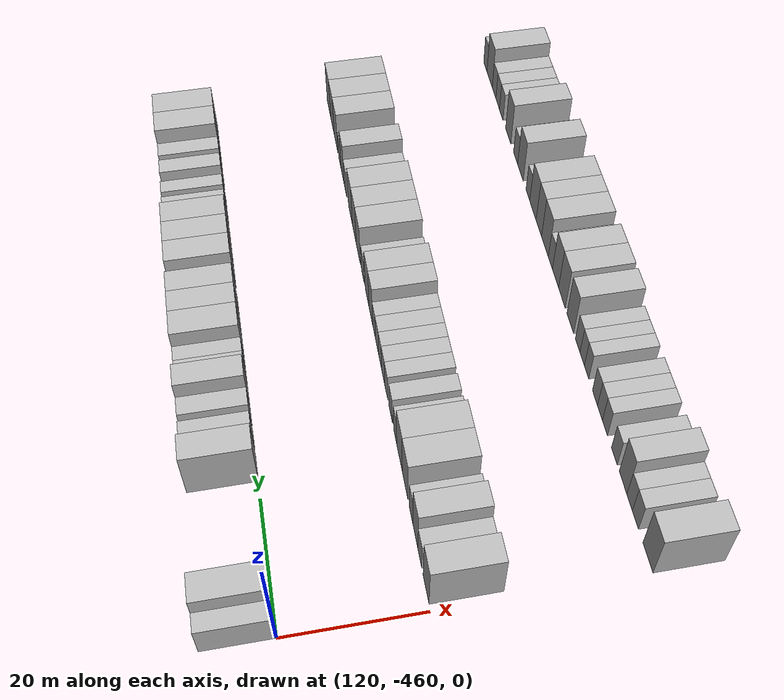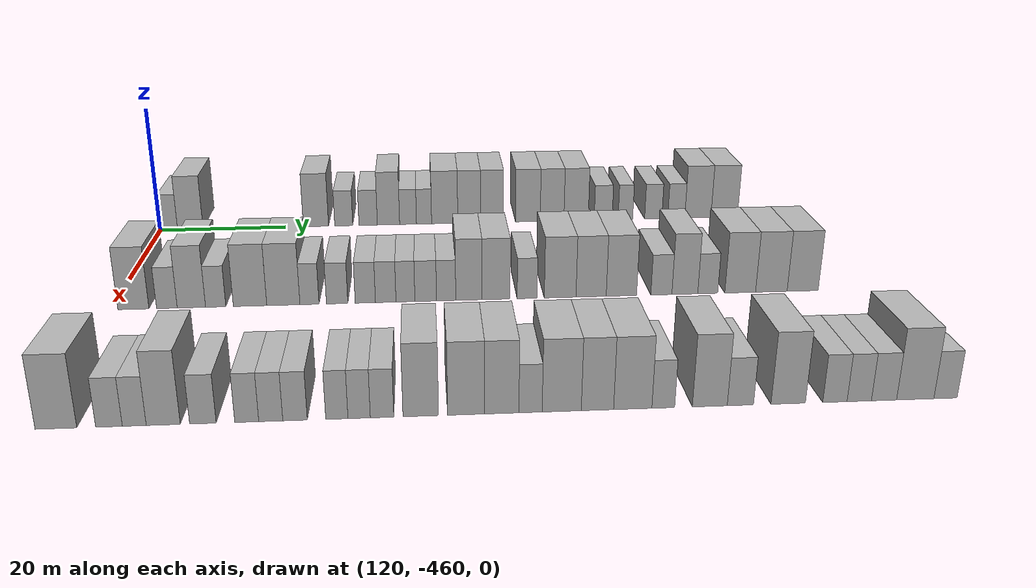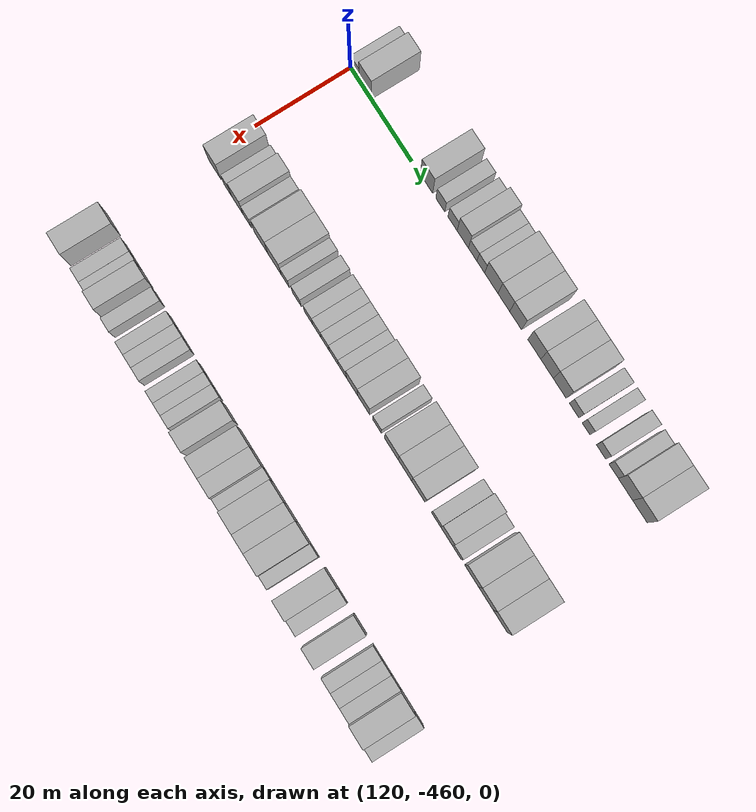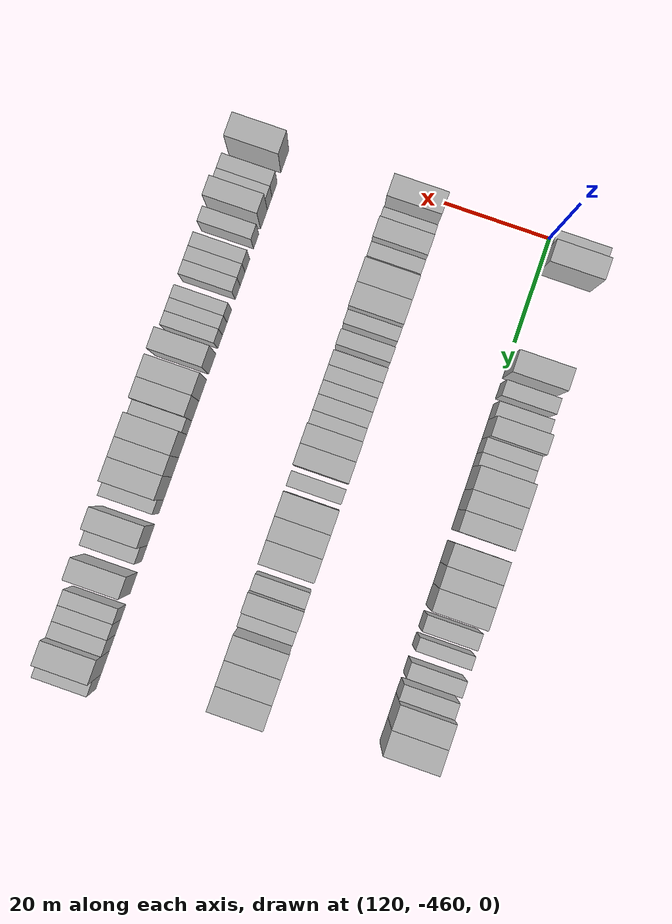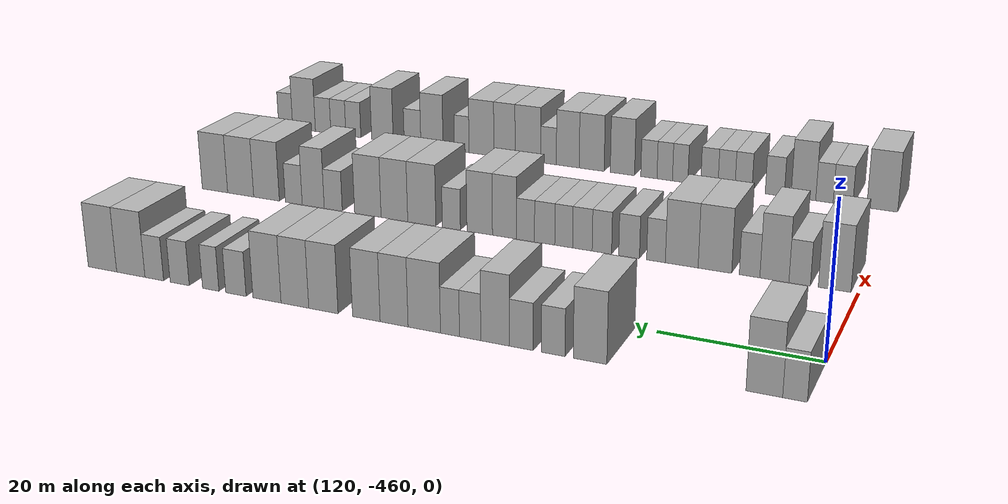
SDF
<sdf version="1.6">
 <world name="default">
  <model name="building_680">
   <static>1</static>
   <pose>115.0000 -458.6556 0 0.000000 0.000000 0.000000</pose>
   <link name="link">
    <pose>0 0 3.00 0 0 0</pose>
    <collision name="collision"><geometry><box><size>10.0000 2.6889 6.0000</size></box></geometry></collision>
    <visual name="visual">
     <cast_shadows>0</cast_shadows>
     <geometry><box><size>10.0000 2.6889 6.0000</size></box></geometry>
     <material>
      <script>
       <uri>model://HANNAS_wall/materials/scripts</uri>
       <uri>model://HANNAS_wall/materials/textures</uri>
       <name>vrc/HANNAS_wall</name>
      </script>
     </material>
    </visual>
   </link>
  </model>
  <model name="building_681">
   <static>1</static>
   <pose>115.0000 -455.2811 0 0.000000 0.000000 0.000000</pose>
   <link name="link">
    <pose>0 0 4.50 0 0 0</pose>
    <collision name="collision"><geometry><box><size>10.0000 4.0601 9.0000</size></box></geometry></collision>
    <visual name="visual">
     <cast_shadows>0</cast_shadows>
     <geometry><box><size>10.0000 4.0601 9.0000</size></box></geometry>
     <material>
      <script>
       <uri>model://HANNAS_wall/materials/scripts</uri>
       <uri>model://HANNAS_wall/materials/textures</uri>
       <name>vrc/HANNAS_wall</name>
      </script>
     </material>
    </visual>
   </link>
  </model>
  <model name="building_682">
   <static>1</static>
   <pose>115.0000 -435.1572 0 0.000000 0.000000 0.000000</pose>
   <link name="link">
    <pose>0 0 4.50 0 0 0</pose>
    <collision name="collision"><geometry><box><size>10.0000 4.0626 9.0000</size></box></geometry></collision>
    <visual name="visual">
     <cast_shadows>0</cast_shadows>
     <geometry><box><size>10.0000 4.0626 9.0000</size></box></geometry>
     <material>
      <script>
       <uri>model://HANNAS_wall/materials/scripts</uri>
       <uri>model://HANNAS_wall/materials/textures</uri>
       <name>vrc/HANNAS_wall</name>
      </script>
     </material>
    </visual>
   </link>
  </model>
  <model name="building_683">
   <static>1</static>
   <pose>115.0000 -430.6680 0 0.000000 0.000000 0.000000</pose>
   <link name="link">
    <pose>0 0 3.00 0 0 0</pose>
    <collision name="collision"><geometry><box><size>10.0000 2.9157 6.0000</size></box></geometry></collision>
    <visual name="visual">
     <cast_shadows>0</cast_shadows>
     <geometry><box><size>10.0000 2.9157 6.0000</size></box></geometry>
     <material>
      <script>
       <uri>model://HANNAS_wall/materials/scripts</uri>
       <uri>model://HANNAS_wall/materials/textures</uri>
       <name>vrc/HANNAS_wall</name>
      </script>
     </material>
    </visual>
   </link>
  </model>
  <model name="building_684">
   <static>1</static>
   <pose>115.0000 -426.7165 0 0.000000 0.000000 0.000000</pose>
   <link name="link">
    <pose>0 0 3.00 0 0 0</pose>
    <collision name="collision"><geometry><box><size>10.0000 2.9874 6.0000</size></box></geometry></collision>
    <visual name="visual">
     <cast_shadows>0</cast_shadows>
     <geometry><box><size>10.0000 2.9874 6.0000</size></box></geometry>
     <material>
      <script>
       <uri>model://HANNAS_wall/materials/scripts</uri>
       <uri>model://HANNAS_wall/materials/textures</uri>
       <name>vrc/HANNAS_wall</name>
      </script>
     </material>
    </visual>
   </link>
  </model>
  <model name="building_685">
   <static>1</static>
   <pose>115.0000 -423.4122 0 0.000000 0.000000 0.000000</pose>
   <link name="link">
    <pose>0 0 4.50 0 0 0</pose>
    <collision name="collision"><geometry><box><size>10.0000 3.6212 9.0000</size></box></geometry></collision>
    <visual name="visual">
     <cast_shadows>0</cast_shadows>
     <geometry><box><size>10.0000 3.6212 9.0000</size></box></geometry>
     <material>
      <script>
       <uri>model://HANNAS_wall/materials/scripts</uri>
       <uri>model://HANNAS_wall/materials/textures</uri>
       <name>vrc/HANNAS_wall</name>
      </script>
     </material>
    </visual>
   </link>
  </model>
  <model name="building_686">
   <static>1</static>
   <pose>115.0000 -420.2289 0 0.000000 0.000000 0.000000</pose>
   <link name="link">
    <pose>0 0 3.00 0 0 0</pose>
    <collision name="collision"><geometry><box><size>10.0000 2.7454 6.0000</size></box></geometry></collision>
    <visual name="visual">
     <cast_shadows>0</cast_shadows>
     <geometry><box><size>10.0000 2.7454 6.0000</size></box></geometry>
     <material>
      <script>
       <uri>model://HANNAS_wall/materials/scripts</uri>
       <uri>model://HANNAS_wall/materials/textures</uri>
       <name>vrc/HANNAS_wall</name>
      </script>
     </material>
    </visual>
   </link>
  </model>
  <model name="building_687">
   <static>1</static>
   <pose>115.0000 -417.6222 0 0.000000 0.000000 0.000000</pose>
   <link name="link">
    <pose>0 0 3.00 0 0 0</pose>
    <collision name="collision"><geometry><box><size>10.0000 2.4681 6.0000</size></box></geometry></collision>
    <visual name="visual">
     <cast_shadows>0</cast_shadows>
     <geometry><box><size>10.0000 2.4681 6.0000</size></box></geometry>
     <material>
      <script>
       <uri>model://HANNAS_wall/materials/scripts</uri>
       <uri>model://HANNAS_wall/materials/textures</uri>
       <name>vrc/HANNAS_wall</name>
      </script>
     </material>
    </visual>
   </link>
  </model>
  <model name="building_688">
   <static>1</static>
   <pose>115.0000 -414.2495 0 0.000000 0.000000 0.000000</pose>
   <link name="link">
    <pose>0 0 4.50 0 0 0</pose>
    <collision name="collision"><geometry><box><size>10.0000 4.2773 9.0000</size></box></geometry></collision>
    <visual name="visual">
     <cast_shadows>0</cast_shadows>
     <geometry><box><size>10.0000 4.2773 9.0000</size></box></geometry>
     <material>
      <script>
       <uri>model://HANNAS_wall/materials/scripts</uri>
       <uri>model://HANNAS_wall/materials/textures</uri>
       <name>vrc/HANNAS_wall</name>
      </script>
     </material>
    </visual>
   </link>
  </model>
  <model name="building_689">
   <static>1</static>
   <pose>115.0000 -410.2379 0 0.000000 0.000000 0.000000</pose>
   <link name="link">
    <pose>0 0 4.50 0 0 0</pose>
    <collision name="collision"><geometry><box><size>10.0000 3.7459 9.0000</size></box></geometry></collision>
    <visual name="visual">
     <cast_shadows>0</cast_shadows>
     <geometry><box><size>10.0000 3.7459 9.0000</size></box></geometry>
     <material>
      <script>
       <uri>model://HANNAS_wall/materials/scripts</uri>
       <uri>model://HANNAS_wall/materials/textures</uri>
       <name>vrc/HANNAS_wall</name>
      </script>
     </material>
    </visual>
   </link>
  </model>
  <model name="building_690">
   <static>1</static>
   <pose>115.0000 -406.4873 0 0.000000 0.000000 0.000000</pose>
   <link name="link">
    <pose>0 0 4.50 0 0 0</pose>
    <collision name="collision"><geometry><box><size>10.0000 3.7553 9.0000</size></box></geometry></collision>
    <visual name="visual">
     <cast_shadows>0</cast_shadows>
     <geometry><box><size>10.0000 3.7553 9.0000</size></box></geometry>
     <material>
      <script>
       <uri>model://HANNAS_wall/materials/scripts</uri>
       <uri>model://HANNAS_wall/materials/textures</uri>
       <name>vrc/HANNAS_wall</name>
      </script>
     </material>
    </visual>
   </link>
  </model>
  <model name="building_691">
   <static>1</static>
   <pose>115.0000 -400.5688 0 0.000000 0.000000 0.000000</pose>
   <link name="link">
    <pose>0 0 4.50 0 0 0</pose>
    <collision name="collision"><geometry><box><size>10.0000 4.0818 9.0000</size></box></geometry></collision>
    <visual name="visual">
     <cast_shadows>0</cast_shadows>
     <geometry><box><size>10.0000 4.0818 9.0000</size></box></geometry>
     <material>
      <script>
       <uri>model://HANNAS_wall/materials/scripts</uri>
       <uri>model://HANNAS_wall/materials/textures</uri>
       <name>vrc/HANNAS_wall</name>
      </script>
     </material>
    </visual>
   </link>
  </model>
  <model name="building_692">
   <static>1</static>
   <pose>115.0000 -396.5639 0 0.000000 0.000000 0.000000</pose>
   <link name="link">
    <pose>0 0 4.50 0 0 0</pose>
    <collision name="collision"><geometry><box><size>10.0000 3.9280 9.0000</size></box></geometry></collision>
    <visual name="visual">
     <cast_shadows>0</cast_shadows>
     <geometry><box><size>10.0000 3.9280 9.0000</size></box></geometry>
     <material>
      <script>
       <uri>model://HANNAS_wall/materials/scripts</uri>
       <uri>model://HANNAS_wall/materials/textures</uri>
       <name>vrc/HANNAS_wall</name>
      </script>
     </material>
    </visual>
   </link>
  </model>
  <model name="building_693">
   <static>1</static>
   <pose>115.0000 -392.5798 0 0.000000 0.000000 0.000000</pose>
   <link name="link">
    <pose>0 0 4.50 0 0 0</pose>
    <collision name="collision"><geometry><box><size>10.0000 4.0402 9.0000</size></box></geometry></collision>
    <visual name="visual">
     <cast_shadows>0</cast_shadows>
     <geometry><box><size>10.0000 4.0402 9.0000</size></box></geometry>
     <material>
      <script>
       <uri>model://HANNAS_wall/materials/scripts</uri>
       <uri>model://HANNAS_wall/materials/textures</uri>
       <name>vrc/HANNAS_wall</name>
      </script>
     </material>
    </visual>
   </link>
  </model>
  <model name="building_694">
   <static>1</static>
   <pose>115.0000 -388.0655 0 0.000000 0.000000 0.000000</pose>
   <link name="link">
    <pose>0 0 3.00 0 0 0</pose>
    <collision name="collision"><geometry><box><size>10.0000 2.9882 6.0000</size></box></geometry></collision>
    <visual name="visual">
     <cast_shadows>0</cast_shadows>
     <geometry><box><size>10.0000 2.9882 6.0000</size></box></geometry>
     <material>
      <script>
       <uri>model://HANNAS_wall/materials/scripts</uri>
       <uri>model://HANNAS_wall/materials/textures</uri>
       <name>vrc/HANNAS_wall</name>
      </script>
     </material>
    </visual>
   </link>
  </model>
  <model name="building_695">
   <static>1</static>
   <pose>115.0000 -384.3551 0 0.000000 0.000000 0.000000</pose>
   <link name="link">
    <pose>0 0 3.00 0 0 0</pose>
    <collision name="collision"><geometry><box><size>10.0000 2.4326 6.0000</size></box></geometry></collision>
    <visual name="visual">
     <cast_shadows>0</cast_shadows>
     <geometry><box><size>10.0000 2.4326 6.0000</size></box></geometry>
     <material>
      <script>
       <uri>model://HANNAS_wall/materials/scripts</uri>
       <uri>model://HANNAS_wall/materials/textures</uri>
       <name>vrc/HANNAS_wall</name>
      </script>
     </material>
    </visual>
   </link>
  </model>
  <model name="building_696">
   <static>1</static>
   <pose>115.0000 -379.6970 0 0.000000 0.000000 0.000000</pose>
   <link name="link">
    <pose>0 0 3.00 0 0 0</pose>
    <collision name="collision"><geometry><box><size>10.0000 2.8836 6.0000</size></box></geometry></collision>
    <visual name="visual">
     <cast_shadows>0</cast_shadows>
     <geometry><box><size>10.0000 2.8836 6.0000</size></box></geometry>
     <material>
      <script>
       <uri>model://HANNAS_wall/materials/scripts</uri>
       <uri>model://HANNAS_wall/materials/textures</uri>
       <name>vrc/HANNAS_wall</name>
      </script>
     </material>
    </visual>
   </link>
  </model>
  <model name="building_697">
   <static>1</static>
   <pose>115.0000 -375.8244 0 0.000000 0.000000 0.000000</pose>
   <link name="link">
    <pose>0 0 3.00 0 0 0</pose>
    <collision name="collision"><geometry><box><size>10.0000 2.8615 6.0000</size></box></geometry></collision>
    <visual name="visual">
     <cast_shadows>0</cast_shadows>
     <geometry><box><size>10.0000 2.8615 6.0000</size></box></geometry>
     <material>
      <script>
       <uri>model://HANNAS_wall/materials/scripts</uri>
       <uri>model://HANNAS_wall/materials/textures</uri>
       <name>vrc/HANNAS_wall</name>
      </script>
     </material>
    </visual>
   </link>
  </model>
  <model name="building_698">
   <static>1</static>
   <pose>115.0000 -372.1917 0 0.000000 0.000000 0.000000</pose>
   <link name="link">
    <pose>0 0 4.50 0 0 0</pose>
    <collision name="collision"><geometry><box><size>10.0000 4.4039 9.0000</size></box></geometry></collision>
    <visual name="visual">
     <cast_shadows>0</cast_shadows>
     <geometry><box><size>10.0000 4.4039 9.0000</size></box></geometry>
     <material>
      <script>
       <uri>model://HANNAS_wall/materials/scripts</uri>
       <uri>model://HANNAS_wall/materials/textures</uri>
       <name>vrc/HANNAS_wall</name>
      </script>
     </material>
    </visual>
   </link>
  </model>
  <model name="building_699">
   <static>1</static>
   <pose>115.0000 -367.7457 0 0.000000 0.000000 0.000000</pose>
   <link name="link">
    <pose>0 0 4.50 0 0 0</pose>
    <collision name="collision"><geometry><box><size>10.0000 4.4881 9.0000</size></box></geometry></collision>
    <visual name="visual">
     <cast_shadows>0</cast_shadows>
     <geometry><box><size>10.0000 4.4881 9.0000</size></box></geometry>
     <material>
      <script>
       <uri>model://HANNAS_wall/materials/scripts</uri>
       <uri>model://HANNAS_wall/materials/textures</uri>
       <name>vrc/HANNAS_wall</name>
      </script>
     </material>
    </visual>
   </link>
  </model>
  <model name="building_907">
   <static>1</static>
   <pose>145.0000 -456.9401 0 0.000000 0.000000 0.000000</pose>
   <link name="link">
    <pose>0 0 4.50 0 0 0</pose>
    <collision name="collision"><geometry><box><size>10.0000 4.1198 9.0000</size></box></geometry></collision>
    <visual name="visual">
     <cast_shadows>0</cast_shadows>
     <geometry><box><size>10.0000 4.1198 9.0000</size></box></geometry>
     <material>
      <script>
       <uri>model://HANNAS_wall/materials/scripts</uri>
       <uri>model://HANNAS_wall/materials/textures</uri>
       <name>vrc/HANNAS_wall</name>
      </script>
     </material>
    </visual>
   </link>
  </model>
  <model name="building_908">
   <static>1</static>
   <pose>145.0000 -452.5057 0 0.000000 0.000000 0.000000</pose>
   <link name="link">
    <pose>0 0 3.00 0 0 0</pose>
    <collision name="collision"><geometry><box><size>10.0000 2.7491 6.0000</size></box></geometry></collision>
    <visual name="visual">
     <cast_shadows>0</cast_shadows>
     <geometry><box><size>10.0000 2.7491 6.0000</size></box></geometry>
     <material>
      <script>
       <uri>model://HANNAS_wall/materials/scripts</uri>
       <uri>model://HANNAS_wall/materials/textures</uri>
       <name>vrc/HANNAS_wall</name>
      </script>
     </material>
    </visual>
   </link>
  </model>
  <model name="building_909">
   <static>1</static>
   <pose>145.0000 -449.2464 0 0.000000 0.000000 0.000000</pose>
   <link name="link">
    <pose>0 0 4.50 0 0 0</pose>
    <collision name="collision"><geometry><box><size>10.0000 3.7694 9.0000</size></box></geometry></collision>
    <visual name="visual">
     <cast_shadows>0</cast_shadows>
     <geometry><box><size>10.0000 3.7694 9.0000</size></box></geometry>
     <material>
      <script>
       <uri>model://HANNAS_wall/materials/scripts</uri>
       <uri>model://HANNAS_wall/materials/textures</uri>
       <name>vrc/HANNAS_wall</name>
      </script>
     </material>
    </visual>
   </link>
  </model>
  <model name="building_910">
   <static>1</static>
   <pose>145.0000 -446.0082 0 0.000000 0.000000 0.000000</pose>
   <link name="link">
    <pose>0 0 3.00 0 0 0</pose>
    <collision name="collision"><geometry><box><size>10.0000 2.7070 6.0000</size></box></geometry></collision>
    <visual name="visual">
     <cast_shadows>0</cast_shadows>
     <geometry><box><size>10.0000 2.7070 6.0000</size></box></geometry>
     <material>
      <script>
       <uri>model://HANNAS_wall/materials/scripts</uri>
       <uri>model://HANNAS_wall/materials/textures</uri>
       <name>vrc/HANNAS_wall</name>
      </script>
     </material>
    </visual>
   </link>
  </model>
  <model name="building_911">
   <static>1</static>
   <pose>145.0000 -441.4121 0 0.000000 0.000000 0.000000</pose>
   <link name="link">
    <pose>0 0 4.50 0 0 0</pose>
    <collision name="collision"><geometry><box><size>10.0000 4.4851 9.0000</size></box></geometry></collision>
    <visual name="visual">
     <cast_shadows>0</cast_shadows>
     <geometry><box><size>10.0000 4.4851 9.0000</size></box></geometry>
     <material>
      <script>
       <uri>model://HANNAS_wall/materials/scripts</uri>
       <uri>model://HANNAS_wall/materials/textures</uri>
       <name>vrc/HANNAS_wall</name>
      </script>
     </material>
    </visual>
   </link>
  </model>
  <model name="building_912">
   <static>1</static>
   <pose>145.0000 -436.9407 0 0.000000 0.000000 0.000000</pose>
   <link name="link">
    <pose>0 0 4.50 0 0 0</pose>
    <collision name="collision"><geometry><box><size>10.0000 4.4576 9.0000</size></box></geometry></collision>
    <visual name="visual">
     <cast_shadows>0</cast_shadows>
     <geometry><box><size>10.0000 4.4576 9.0000</size></box></geometry>
     <material>
      <script>
       <uri>model://HANNAS_wall/materials/scripts</uri>
       <uri>model://HANNAS_wall/materials/textures</uri>
       <name>vrc/HANNAS_wall</name>
      </script>
     </material>
    </visual>
   </link>
  </model>
  <model name="building_913">
   <static>1</static>
   <pose>145.0000 -433.4244 0 0.000000 0.000000 0.000000</pose>
   <link name="link">
    <pose>0 0 3.00 0 0 0</pose>
    <collision name="collision"><geometry><box><size>10.0000 2.5751 6.0000</size></box></geometry></collision>
    <visual name="visual">
     <cast_shadows>0</cast_shadows>
     <geometry><box><size>10.0000 2.5751 6.0000</size></box></geometry>
     <material>
      <script>
       <uri>model://HANNAS_wall/materials/scripts</uri>
       <uri>model://HANNAS_wall/materials/textures</uri>
       <name>vrc/HANNAS_wall</name>
      </script>
     </material>
    </visual>
   </link>
  </model>
  <model name="building_914">
   <static>1</static>
   <pose>145.0000 -429.6894 0 0.000000 0.000000 0.000000</pose>
   <link name="link">
    <pose>0 0 3.00 0 0 0</pose>
    <collision name="collision"><geometry><box><size>10.0000 2.8951 6.0000</size></box></geometry></collision>
    <visual name="visual">
     <cast_shadows>0</cast_shadows>
     <geometry><box><size>10.0000 2.8951 6.0000</size></box></geometry>
     <material>
      <script>
       <uri>model://HANNAS_wall/materials/scripts</uri>
       <uri>model://HANNAS_wall/materials/textures</uri>
       <name>vrc/HANNAS_wall</name>
      </script>
     </material>
    </visual>
   </link>
  </model>
  <model name="building_915">
   <static>1</static>
   <pose>145.0000 -425.8674 0 0.000000 0.000000 0.000000</pose>
   <link name="link">
    <pose>0 0 3.00 0 0 0</pose>
    <collision name="collision"><geometry><box><size>10.0000 2.7489 6.0000</size></box></geometry></collision>
    <visual name="visual">
     <cast_shadows>0</cast_shadows>
     <geometry><box><size>10.0000 2.7489 6.0000</size></box></geometry>
     <material>
      <script>
       <uri>model://HANNAS_wall/materials/scripts</uri>
       <uri>model://HANNAS_wall/materials/textures</uri>
       <name>vrc/HANNAS_wall</name>
      </script>
     </material>
    </visual>
   </link>
  </model>
  <model name="building_916">
   <static>1</static>
   <pose>145.0000 -423.0957 0 0.000000 0.000000 0.000000</pose>
   <link name="link">
    <pose>0 0 3.00 0 0 0</pose>
    <collision name="collision"><geometry><box><size>10.0000 2.7945 6.0000</size></box></geometry></collision>
    <visual name="visual">
     <cast_shadows>0</cast_shadows>
     <geometry><box><size>10.0000 2.7945 6.0000</size></box></geometry>
     <material>
      <script>
       <uri>model://HANNAS_wall/materials/scripts</uri>
       <uri>model://HANNAS_wall/materials/textures</uri>
       <name>vrc/HANNAS_wall</name>
      </script>
     </material>
    </visual>
   </link>
  </model>
  <model name="building_917">
   <static>1</static>
   <pose>145.0000 -420.4078 0 0.000000 0.000000 0.000000</pose>
   <link name="link">
    <pose>0 0 3.00 0 0 0</pose>
    <collision name="collision"><geometry><box><size>10.0000 2.5813 6.0000</size></box></geometry></collision>
    <visual name="visual">
     <cast_shadows>0</cast_shadows>
     <geometry><box><size>10.0000 2.5813 6.0000</size></box></geometry>
     <material>
      <script>
       <uri>model://HANNAS_wall/materials/scripts</uri>
       <uri>model://HANNAS_wall/materials/textures</uri>
       <name>vrc/HANNAS_wall</name>
      </script>
     </material>
    </visual>
   </link>
  </model>
  <model name="building_918">
   <static>1</static>
   <pose>145.0000 -417.6397 0 0.000000 0.000000 0.000000</pose>
   <link name="link">
    <pose>0 0 3.00 0 0 0</pose>
    <collision name="collision"><geometry><box><size>10.0000 2.9550 6.0000</size></box></geometry></collision>
    <visual name="visual">
     <cast_shadows>0</cast_shadows>
     <geometry><box><size>10.0000 2.9550 6.0000</size></box></geometry>
     <material>
      <script>
       <uri>model://HANNAS_wall/materials/scripts</uri>
       <uri>model://HANNAS_wall/materials/textures</uri>
       <name>vrc/HANNAS_wall</name>
      </script>
     </material>
    </visual>
   </link>
  </model>
  <model name="building_919">
   <static>1</static>
   <pose>145.0000 -414.8452 0 0.000000 0.000000 0.000000</pose>
   <link name="link">
    <pose>0 0 3.00 0 0 0</pose>
    <collision name="collision"><geometry><box><size>10.0000 2.6340 6.0000</size></box></geometry></collision>
    <visual name="visual">
     <cast_shadows>0</cast_shadows>
     <geometry><box><size>10.0000 2.6340 6.0000</size></box></geometry>
     <material>
      <script>
       <uri>model://HANNAS_wall/materials/scripts</uri>
       <uri>model://HANNAS_wall/materials/textures</uri>
       <name>vrc/HANNAS_wall</name>
      </script>
     </material>
    </visual>
   </link>
  </model>
  <model name="building_920">
   <static>1</static>
   <pose>145.0000 -411.7252 0 0.000000 0.000000 0.000000</pose>
   <link name="link">
    <pose>0 0 4.50 0 0 0</pose>
    <collision name="collision"><geometry><box><size>10.0000 3.6062 9.0000</size></box></geometry></collision>
    <visual name="visual">
     <cast_shadows>0</cast_shadows>
     <geometry><box><size>10.0000 3.6062 9.0000</size></box></geometry>
     <material>
      <script>
       <uri>model://HANNAS_wall/materials/scripts</uri>
       <uri>model://HANNAS_wall/materials/textures</uri>
       <name>vrc/HANNAS_wall</name>
      </script>
     </material>
    </visual>
   </link>
  </model>
  <model name="building_921">
   <static>1</static>
   <pose>145.0000 -407.9986 0 0.000000 0.000000 0.000000</pose>
   <link name="link">
    <pose>0 0 4.50 0 0 0</pose>
    <collision name="collision"><geometry><box><size>10.0000 3.8470 9.0000</size></box></geometry></collision>
    <visual name="visual">
     <cast_shadows>0</cast_shadows>
     <geometry><box><size>10.0000 3.8470 9.0000</size></box></geometry>
     <material>
      <script>
       <uri>model://HANNAS_wall/materials/scripts</uri>
       <uri>model://HANNAS_wall/materials/textures</uri>
       <name>vrc/HANNAS_wall</name>
      </script>
     </material>
    </visual>
   </link>
  </model>
  <model name="building_922">
   <static>1</static>
   <pose>145.0000 -403.6972 0 0.000000 0.000000 0.000000</pose>
   <link name="link">
    <pose>0 0 3.00 0 0 0</pose>
    <collision name="collision"><geometry><box><size>10.0000 2.7557 6.0000</size></box></geometry></collision>
    <visual name="visual">
     <cast_shadows>0</cast_shadows>
     <geometry><box><size>10.0000 2.7557 6.0000</size></box></geometry>
     <material>
      <script>
       <uri>model://HANNAS_wall/materials/scripts</uri>
       <uri>model://HANNAS_wall/materials/textures</uri>
       <name>vrc/HANNAS_wall</name>
      </script>
     </material>
    </visual>
   </link>
  </model>
  <model name="building_923">
   <static>1</static>
   <pose>145.0000 -399.1198 0 0.000000 0.000000 0.000000</pose>
   <link name="link">
    <pose>0 0 4.50 0 0 0</pose>
    <collision name="collision"><geometry><box><size>10.0000 4.3992 9.0000</size></box></geometry></collision>
    <visual name="visual">
     <cast_shadows>0</cast_shadows>
     <geometry><box><size>10.0000 4.3992 9.0000</size></box></geometry>
     <material>
      <script>
       <uri>model://HANNAS_wall/materials/scripts</uri>
       <uri>model://HANNAS_wall/materials/textures</uri>
       <name>vrc/HANNAS_wall</name>
      </script>
     </material>
    </visual>
   </link>
  </model>
  <model name="building_924">
   <static>1</static>
   <pose>145.0000 -394.8133 0 0.000000 0.000000 0.000000</pose>
   <link name="link">
    <pose>0 0 4.50 0 0 0</pose>
    <collision name="collision"><geometry><box><size>10.0000 4.2138 9.0000</size></box></geometry></collision>
    <visual name="visual">
     <cast_shadows>0</cast_shadows>
     <geometry><box><size>10.0000 4.2138 9.0000</size></box></geometry>
     <material>
      <script>
       <uri>model://HANNAS_wall/materials/scripts</uri>
       <uri>model://HANNAS_wall/materials/textures</uri>
       <name>vrc/HANNAS_wall</name>
      </script>
     </material>
    </visual>
   </link>
  </model>
  <model name="building_925">
   <static>1</static>
   <pose>145.0000 -390.5817 0 0.000000 0.000000 0.000000</pose>
   <link name="link">
    <pose>0 0 4.50 0 0 0</pose>
    <collision name="collision"><geometry><box><size>10.0000 4.2495 9.0000</size></box></geometry></collision>
    <visual name="visual">
     <cast_shadows>0</cast_shadows>
     <geometry><box><size>10.0000 4.2495 9.0000</size></box></geometry>
     <material>
      <script>
       <uri>model://HANNAS_wall/materials/scripts</uri>
       <uri>model://HANNAS_wall/materials/textures</uri>
       <name>vrc/HANNAS_wall</name>
      </script>
     </material>
    </visual>
   </link>
  </model>
  <model name="building_926">
   <static>1</static>
   <pose>145.0000 -384.9813 0 0.000000 0.000000 0.000000</pose>
   <link name="link">
    <pose>0 0 3.00 0 0 0</pose>
    <collision name="collision"><geometry><box><size>10.0000 2.9515 6.0000</size></box></geometry></collision>
    <visual name="visual">
     <cast_shadows>0</cast_shadows>
     <geometry><box><size>10.0000 2.9515 6.0000</size></box></geometry>
     <material>
      <script>
       <uri>model://HANNAS_wall/materials/scripts</uri>
       <uri>model://HANNAS_wall/materials/textures</uri>
       <name>vrc/HANNAS_wall</name>
      </script>
     </material>
    </visual>
   </link>
  </model>
  <model name="building_927">
   <static>1</static>
   <pose>145.0000 -381.6823 0 0.000000 0.000000 0.000000</pose>
   <link name="link">
    <pose>0 0 4.50 0 0 0</pose>
    <collision name="collision"><geometry><box><size>10.0000 3.6464 9.0000</size></box></geometry></collision>
    <visual name="visual">
     <cast_shadows>0</cast_shadows>
     <geometry><box><size>10.0000 3.6464 9.0000</size></box></geometry>
     <material>
      <script>
       <uri>model://HANNAS_wall/materials/scripts</uri>
       <uri>model://HANNAS_wall/materials/textures</uri>
       <name>vrc/HANNAS_wall</name>
      </script>
     </material>
    </visual>
   </link>
  </model>
  <model name="building_928">
   <static>1</static>
   <pose>145.0000 -378.4458 0 0.000000 0.000000 0.000000</pose>
   <link name="link">
    <pose>0 0 3.00 0 0 0</pose>
    <collision name="collision"><geometry><box><size>10.0000 2.8268 6.0000</size></box></geometry></collision>
    <visual name="visual">
     <cast_shadows>0</cast_shadows>
     <geometry><box><size>10.0000 2.8268 6.0000</size></box></geometry>
     <material>
      <script>
       <uri>model://HANNAS_wall/materials/scripts</uri>
       <uri>model://HANNAS_wall/materials/textures</uri>
       <name>vrc/HANNAS_wall</name>
      </script>
     </material>
    </visual>
   </link>
  </model>
  <model name="building_929">
   <static>1</static>
   <pose>145.0000 -373.8498 0 0.000000 0.000000 0.000000</pose>
   <link name="link">
    <pose>0 0 4.50 0 0 0</pose>
    <collision name="collision"><geometry><box><size>10.0000 4.3652 9.0000</size></box></geometry></collision>
    <visual name="visual">
     <cast_shadows>0</cast_shadows>
     <geometry><box><size>10.0000 4.3652 9.0000</size></box></geometry>
     <material>
      <script>
       <uri>model://HANNAS_wall/materials/scripts</uri>
       <uri>model://HANNAS_wall/materials/textures</uri>
       <name>vrc/HANNAS_wall</name>
      </script>
     </material>
    </visual>
   </link>
  </model>
  <model name="building_930">
   <static>1</static>
   <pose>145.0000 -369.4204 0 0.000000 0.000000 0.000000</pose>
   <link name="link">
    <pose>0 0 4.50 0 0 0</pose>
    <collision name="collision"><geometry><box><size>10.0000 4.4936 9.0000</size></box></geometry></collision>
    <visual name="visual">
     <cast_shadows>0</cast_shadows>
     <geometry><box><size>10.0000 4.4936 9.0000</size></box></geometry>
     <material>
      <script>
       <uri>model://HANNAS_wall/materials/scripts</uri>
       <uri>model://HANNAS_wall/materials/textures</uri>
       <name>vrc/HANNAS_wall</name>
      </script>
     </material>
    </visual>
   </link>
  </model>
  <model name="building_931">
   <static>1</static>
   <pose>145.0000 -364.9582 0 0.000000 0.000000 0.000000</pose>
   <link name="link">
    <pose>0 0 4.50 0 0 0</pose>
    <collision name="collision"><geometry><box><size>10.0000 4.4308 9.0000</size></box></geometry></collision>
    <visual name="visual">
     <cast_shadows>0</cast_shadows>
     <geometry><box><size>10.0000 4.4308 9.0000</size></box></geometry>
     <material>
      <script>
       <uri>model://HANNAS_wall/materials/scripts</uri>
       <uri>model://HANNAS_wall/materials/textures</uri>
       <name>vrc/HANNAS_wall</name>
      </script>
     </material>
    </visual>
   </link>
  </model>
  <model name="building_1133">
   <static>1</static>
   <pose>175.0000 -457.7974 0 0.000000 0.000000 0.000000</pose>
   <link name="link">
    <pose>0 0 4.50 0 0 0</pose>
    <collision name="collision"><geometry><box><size>10.0000 4.4052 9.0000</size></box></geometry></collision>
    <visual name="visual">
     <cast_shadows>0</cast_shadows>
     <geometry><box><size>10.0000 4.4052 9.0000</size></box></geometry>
     <material>
      <script>
       <uri>model://HANNAS_wall/materials/scripts</uri>
       <uri>model://HANNAS_wall/materials/textures</uri>
       <name>vrc/HANNAS_wall</name>
      </script>
     </material>
    </visual>
   </link>
  </model>
  <model name="building_1134">
   <static>1</static>
   <pose>175.0000 -452.1801 0 0.000000 0.000000 0.000000</pose>
   <link name="link">
    <pose>0 0 3.00 0 0 0</pose>
    <collision name="collision"><geometry><box><size>10.0000 2.8294 6.0000</size></box></geometry></collision>
    <visual name="visual">
     <cast_shadows>0</cast_shadows>
     <geometry><box><size>10.0000 2.8294 6.0000</size></box></geometry>
     <material>
      <script>
       <uri>model://HANNAS_wall/materials/scripts</uri>
       <uri>model://HANNAS_wall/materials/textures</uri>
       <name>vrc/HANNAS_wall</name>
      </script>
     </material>
    </visual>
   </link>
  </model>
  <model name="building_1135">
   <static>1</static>
   <pose>175.0000 -449.4910 0 0.000000 0.000000 0.000000</pose>
   <link name="link">
    <pose>0 0 3.00 0 0 0</pose>
    <collision name="collision"><geometry><box><size>10.0000 2.5487 6.0000</size></box></geometry></collision>
    <visual name="visual">
     <cast_shadows>0</cast_shadows>
     <geometry><box><size>10.0000 2.5487 6.0000</size></box></geometry>
     <material>
      <script>
       <uri>model://HANNAS_wall/materials/scripts</uri>
       <uri>model://HANNAS_wall/materials/textures</uri>
       <name>vrc/HANNAS_wall</name>
      </script>
     </material>
    </visual>
   </link>
  </model>
  <model name="building_1136">
   <static>1</static>
   <pose>175.0000 -446.3970 0 0.000000 0.000000 0.000000</pose>
   <link name="link">
    <pose>0 0 4.50 0 0 0</pose>
    <collision name="collision"><geometry><box><size>10.0000 3.6394 9.0000</size></box></geometry></collision>
    <visual name="visual">
     <cast_shadows>0</cast_shadows>
     <geometry><box><size>10.0000 3.6394 9.0000</size></box></geometry>
     <material>
      <script>
       <uri>model://HANNAS_wall/materials/scripts</uri>
       <uri>model://HANNAS_wall/materials/textures</uri>
       <name>vrc/HANNAS_wall</name>
      </script>
     </material>
    </visual>
   </link>
  </model>
  <model name="building_1137">
   <static>1</static>
   <pose>175.0000 -442.1519 0 0.000000 0.000000 0.000000</pose>
   <link name="link">
    <pose>0 0 3.00 0 0 0</pose>
    <collision name="collision"><geometry><box><size>10.0000 2.8509 6.0000</size></box></geometry></collision>
    <visual name="visual">
     <cast_shadows>0</cast_shadows>
     <geometry><box><size>10.0000 2.8509 6.0000</size></box></geometry>
     <material>
      <script>
       <uri>model://HANNAS_wall/materials/scripts</uri>
       <uri>model://HANNAS_wall/materials/textures</uri>
       <name>vrc/HANNAS_wall</name>
      </script>
     </material>
    </visual>
   </link>
  </model>
  <model name="building_1138">
   <static>1</static>
   <pose>175.0000 -437.4345 0 0.000000 0.000000 0.000000</pose>
   <link name="link">
    <pose>0 0 3.00 0 0 0</pose>
    <collision name="collision"><geometry><box><size>10.0000 2.5838 6.0000</size></box></geometry></collision>
    <visual name="visual">
     <cast_shadows>0</cast_shadows>
     <geometry><box><size>10.0000 2.5838 6.0000</size></box></geometry>
     <material>
      <script>
       <uri>model://HANNAS_wall/materials/scripts</uri>
       <uri>model://HANNAS_wall/materials/textures</uri>
       <name>vrc/HANNAS_wall</name>
      </script>
     </material>
    </visual>
   </link>
  </model>
  <model name="building_1139">
   <static>1</static>
   <pose>175.0000 -434.8424 0 0.000000 0.000000 0.000000</pose>
   <link name="link">
    <pose>0 0 3.00 0 0 0</pose>
    <collision name="collision"><geometry><box><size>10.0000 2.6004 6.0000</size></box></geometry></collision>
    <visual name="visual">
     <cast_shadows>0</cast_shadows>
     <geometry><box><size>10.0000 2.6004 6.0000</size></box></geometry>
     <material>
      <script>
       <uri>model://HANNAS_wall/materials/scripts</uri>
       <uri>model://HANNAS_wall/materials/textures</uri>
       <name>vrc/HANNAS_wall</name>
      </script>
     </material>
    </visual>
   </link>
  </model>
  <model name="building_1140">
   <static>1</static>
   <pose>175.0000 -432.2111 0 0.000000 0.000000 0.000000</pose>
   <link name="link">
    <pose>0 0 3.00 0 0 0</pose>
    <collision name="collision"><geometry><box><size>10.0000 2.6621 6.0000</size></box></geometry></collision>
    <visual name="visual">
     <cast_shadows>0</cast_shadows>
     <geometry><box><size>10.0000 2.6621 6.0000</size></box></geometry>
     <material>
      <script>
       <uri>model://HANNAS_wall/materials/scripts</uri>
       <uri>model://HANNAS_wall/materials/textures</uri>
       <name>vrc/HANNAS_wall</name>
      </script>
     </material>
    </visual>
   </link>
  </model>
  <model name="building_1141">
   <static>1</static>
   <pose>175.0000 -427.6694 0 0.000000 0.000000 0.000000</pose>
   <link name="link">
    <pose>0 0 3.00 0 0 0</pose>
    <collision name="collision"><geometry><box><size>10.0000 2.4213 6.0000</size></box></geometry></collision>
    <visual name="visual">
     <cast_shadows>0</cast_shadows>
     <geometry><box><size>10.0000 2.4213 6.0000</size></box></geometry>
     <material>
      <script>
       <uri>model://HANNAS_wall/materials/scripts</uri>
       <uri>model://HANNAS_wall/materials/textures</uri>
       <name>vrc/HANNAS_wall</name>
      </script>
     </material>
    </visual>
   </link>
  </model>
  <model name="building_1142">
   <static>1</static>
   <pose>175.0000 -425.2369 0 0.000000 0.000000 0.000000</pose>
   <link name="link">
    <pose>0 0 3.00 0 0 0</pose>
    <collision name="collision"><geometry><box><size>10.0000 2.4437 6.0000</size></box></geometry></collision>
    <visual name="visual">
     <cast_shadows>0</cast_shadows>
     <geometry><box><size>10.0000 2.4437 6.0000</size></box></geometry>
     <material>
      <script>
       <uri>model://HANNAS_wall/materials/scripts</uri>
       <uri>model://HANNAS_wall/materials/textures</uri>
       <name>vrc/HANNAS_wall</name>
      </script>
     </material>
    </visual>
   </link>
  </model>
  <model name="building_1143">
   <static>1</static>
   <pose>175.0000 -422.7265 0 0.000000 0.000000 0.000000</pose>
   <link name="link">
    <pose>0 0 3.00 0 0 0</pose>
    <collision name="collision"><geometry><box><size>10.0000 2.5771 6.0000</size></box></geometry></collision>
    <visual name="visual">
     <cast_shadows>0</cast_shadows>
     <geometry><box><size>10.0000 2.5771 6.0000</size></box></geometry>
     <material>
      <script>
       <uri>model://HANNAS_wall/materials/scripts</uri>
       <uri>model://HANNAS_wall/materials/textures</uri>
       <name>vrc/HANNAS_wall</name>
      </script>
     </material>
    </visual>
   </link>
  </model>
  <model name="building_1144">
   <static>1</static>
   <pose>175.0000 -418.4784 0 0.000000 0.000000 0.000000</pose>
   <link name="link">
    <pose>0 0 4.50 0 0 0</pose>
    <collision name="collision"><geometry><box><size>10.0000 3.9191 9.0000</size></box></geometry></collision>
    <visual name="visual">
     <cast_shadows>0</cast_shadows>
     <geometry><box><size>10.0000 3.9191 9.0000</size></box></geometry>
     <material>
      <script>
       <uri>model://HANNAS_wall/materials/scripts</uri>
       <uri>model://HANNAS_wall/materials/textures</uri>
       <name>vrc/HANNAS_wall</name>
      </script>
     </material>
    </visual>
   </link>
  </model>
  <model name="building_1145">
   <static>1</static>
   <pose>175.0000 -413.4706 0 0.000000 0.000000 0.000000</pose>
   <link name="link">
    <pose>0 0 4.50 0 0 0</pose>
    <collision name="collision"><geometry><box><size>10.0000 4.0964 9.0000</size></box></geometry></collision>
    <visual name="visual">
     <cast_shadows>0</cast_shadows>
     <geometry><box><size>10.0000 4.0964 9.0000</size></box></geometry>
     <material>
      <script>
       <uri>model://HANNAS_wall/materials/scripts</uri>
       <uri>model://HANNAS_wall/materials/textures</uri>
       <name>vrc/HANNAS_wall</name>
      </script>
     </material>
    </visual>
   </link>
  </model>
  <model name="building_1146">
   <static>1</static>
   <pose>175.0000 -409.5229 0 0.000000 0.000000 0.000000</pose>
   <link name="link">
    <pose>0 0 4.50 0 0 0</pose>
    <collision name="collision"><geometry><box><size>10.0000 3.7989 9.0000</size></box></geometry></collision>
    <visual name="visual">
     <cast_shadows>0</cast_shadows>
     <geometry><box><size>10.0000 3.7989 9.0000</size></box></geometry>
     <material>
      <script>
       <uri>model://HANNAS_wall/materials/scripts</uri>
       <uri>model://HANNAS_wall/materials/textures</uri>
       <name>vrc/HANNAS_wall</name>
      </script>
     </material>
    </visual>
   </link>
  </model>
  <model name="building_1147">
   <static>1</static>
   <pose>175.0000 -406.3266 0 0.000000 0.000000 0.000000</pose>
   <link name="link">
    <pose>0 0 3.00 0 0 0</pose>
    <collision name="collision"><geometry><box><size>10.0000 2.5938 6.0000</size></box></geometry></collision>
    <visual name="visual">
     <cast_shadows>0</cast_shadows>
     <geometry><box><size>10.0000 2.5938 6.0000</size></box></geometry>
     <material>
      <script>
       <uri>model://HANNAS_wall/materials/scripts</uri>
       <uri>model://HANNAS_wall/materials/textures</uri>
       <name>vrc/HANNAS_wall</name>
      </script>
     </material>
    </visual>
   </link>
  </model>
  <model name="building_1148">
   <static>1</static>
   <pose>175.0000 -402.8429 0 0.000000 0.000000 0.000000</pose>
   <link name="link">
    <pose>0 0 4.50 0 0 0</pose>
    <collision name="collision"><geometry><box><size>10.0000 4.3736 9.0000</size></box></geometry></collision>
    <visual name="visual">
     <cast_shadows>0</cast_shadows>
     <geometry><box><size>10.0000 4.3736 9.0000</size></box></geometry>
     <material>
      <script>
       <uri>model://HANNAS_wall/materials/scripts</uri>
       <uri>model://HANNAS_wall/materials/textures</uri>
       <name>vrc/HANNAS_wall</name>
      </script>
     </material>
    </visual>
   </link>
  </model>
  <model name="building_1149">
   <static>1</static>
   <pose>175.0000 -398.8394 0 0.000000 0.000000 0.000000</pose>
   <link name="link">
    <pose>0 0 4.50 0 0 0</pose>
    <collision name="collision"><geometry><box><size>10.0000 3.6335 9.0000</size></box></geometry></collision>
    <visual name="visual">
     <cast_shadows>0</cast_shadows>
     <geometry><box><size>10.0000 3.6335 9.0000</size></box></geometry>
     <material>
      <script>
       <uri>model://HANNAS_wall/materials/scripts</uri>
       <uri>model://HANNAS_wall/materials/textures</uri>
       <name>vrc/HANNAS_wall</name>
      </script>
     </material>
    </visual>
   </link>
  </model>
  <model name="building_1150">
   <static>1</static>
   <pose>175.0000 -394.8647 0 0.000000 0.000000 0.000000</pose>
   <link name="link">
    <pose>0 0 4.50 0 0 0</pose>
    <collision name="collision"><geometry><box><size>10.0000 4.3159 9.0000</size></box></geometry></collision>
    <visual name="visual">
     <cast_shadows>0</cast_shadows>
     <geometry><box><size>10.0000 4.3159 9.0000</size></box></geometry>
     <material>
      <script>
       <uri>model://HANNAS_wall/materials/scripts</uri>
       <uri>model://HANNAS_wall/materials/textures</uri>
       <name>vrc/HANNAS_wall</name>
      </script>
     </material>
    </visual>
   </link>
  </model>
  <model name="building_1151">
   <static>1</static>
   <pose>175.0000 -391.4158 0 0.000000 0.000000 0.000000</pose>
   <link name="link">
    <pose>0 0 3.00 0 0 0</pose>
    <collision name="collision"><geometry><box><size>10.0000 2.5817 6.0000</size></box></geometry></collision>
    <visual name="visual">
     <cast_shadows>0</cast_shadows>
     <geometry><box><size>10.0000 2.5817 6.0000</size></box></geometry>
     <material>
      <script>
       <uri>model://HANNAS_wall/materials/scripts</uri>
       <uri>model://HANNAS_wall/materials/textures</uri>
       <name>vrc/HANNAS_wall</name>
      </script>
     </material>
    </visual>
   </link>
  </model>
  <model name="building_1152">
   <static>1</static>
   <pose>175.0000 -386.1373 0 0.000000 0.000000 0.000000</pose>
   <link name="link">
    <pose>0 0 4.50 0 0 0</pose>
    <collision name="collision"><geometry><box><size>10.0000 3.9754 9.0000</size></box></geometry></collision>
    <visual name="visual">
     <cast_shadows>0</cast_shadows>
     <geometry><box><size>10.0000 3.9754 9.0000</size></box></geometry>
     <material>
      <script>
       <uri>model://HANNAS_wall/materials/scripts</uri>
       <uri>model://HANNAS_wall/materials/textures</uri>
       <name>vrc/HANNAS_wall</name>
      </script>
     </material>
    </visual>
   </link>
  </model>
  <model name="building_1153">
   <static>1</static>
   <pose>175.0000 -382.6503 0 0.000000 0.000000 0.000000</pose>
   <link name="link">
    <pose>0 0 3.00 0 0 0</pose>
    <collision name="collision"><geometry><box><size>10.0000 2.9985 6.0000</size></box></geometry></collision>
    <visual name="visual">
     <cast_shadows>0</cast_shadows>
     <geometry><box><size>10.0000 2.9985 6.0000</size></box></geometry>
     <material>
      <script>
       <uri>model://HANNAS_wall/materials/scripts</uri>
       <uri>model://HANNAS_wall/materials/textures</uri>
       <name>vrc/HANNAS_wall</name>
      </script>
     </material>
    </visual>
   </link>
  </model>
  <model name="building_1154">
   <static>1</static>
   <pose>175.0000 -377.1718 0 0.000000 0.000000 0.000000</pose>
   <link name="link">
    <pose>0 0 4.50 0 0 0</pose>
    <collision name="collision"><geometry><box><size>10.0000 3.9585 9.0000</size></box></geometry></collision>
    <visual name="visual">
     <cast_shadows>0</cast_shadows>
     <geometry><box><size>10.0000 3.9585 9.0000</size></box></geometry>
     <material>
      <script>
       <uri>model://HANNAS_wall/materials/scripts</uri>
       <uri>model://HANNAS_wall/materials/textures</uri>
       <name>vrc/HANNAS_wall</name>
      </script>
     </material>
    </visual>
   </link>
  </model>
  <model name="building_1155">
   <static>1</static>
   <pose>175.0000 -371.7896 0 0.000000 0.000000 0.000000</pose>
   <link name="link">
    <pose>0 0 3.00 0 0 0</pose>
    <collision name="collision"><geometry><box><size>10.0000 2.8058 6.0000</size></box></geometry></collision>
    <visual name="visual">
     <cast_shadows>0</cast_shadows>
     <geometry><box><size>10.0000 2.8058 6.0000</size></box></geometry>
     <material>
      <script>
       <uri>model://HANNAS_wall/materials/scripts</uri>
       <uri>model://HANNAS_wall/materials/textures</uri>
       <name>vrc/HANNAS_wall</name>
      </script>
     </material>
    </visual>
   </link>
  </model>
  <model name="building_1156">
   <static>1</static>
   <pose>175.0000 -368.9764 0 0.000000 0.000000 0.000000</pose>
   <link name="link">
    <pose>0 0 3.00 0 0 0</pose>
    <collision name="collision"><geometry><box><size>10.0000 2.8207 6.0000</size></box></geometry></collision>
    <visual name="visual">
     <cast_shadows>0</cast_shadows>
     <geometry><box><size>10.0000 2.8207 6.0000</size></box></geometry>
     <material>
      <script>
       <uri>model://HANNAS_wall/materials/scripts</uri>
       <uri>model://HANNAS_wall/materials/textures</uri>
       <name>vrc/HANNAS_wall</name>
      </script>
     </material>
    </visual>
   </link>
  </model>
  <model name="building_1157">
   <static>1</static>
   <pose>175.0000 -366.1035 0 0.000000 0.000000 0.000000</pose>
   <link name="link">
    <pose>0 0 3.00 0 0 0</pose>
    <collision name="collision"><geometry><box><size>10.0000 2.9251 6.0000</size></box></geometry></collision>
    <visual name="visual">
     <cast_shadows>0</cast_shadows>
     <geometry><box><size>10.0000 2.9251 6.0000</size></box></geometry>
     <material>
      <script>
       <uri>model://HANNAS_wall/materials/scripts</uri>
       <uri>model://HANNAS_wall/materials/textures</uri>
       <name>vrc/HANNAS_wall</name>
      </script>
     </material>
    </visual>
   </link>
  </model>
  <model name="building_1158">
   <static>1</static>
   <pose>175.0000 -362.4659 0 0.000000 0.000000 0.000000</pose>
   <link name="link">
    <pose>0 0 4.50 0 0 0</pose>
    <collision name="collision"><geometry><box><size>10.0000 4.3501 9.0000</size></box></geometry></collision>
    <visual name="visual">
     <cast_shadows>0</cast_shadows>
     <geometry><box><size>10.0000 4.3501 9.0000</size></box></geometry>
     <material>
      <script>
       <uri>model://HANNAS_wall/materials/scripts</uri>
       <uri>model://HANNAS_wall/materials/textures</uri>
       <name>vrc/HANNAS_wall</name>
      </script>
     </material>
    </visual>
   </link>
  </model>
  <model name="building_1159">
   <static>1</static>
   <pose>175.0000 -358.9336 0 0.000000 0.000000 0.000000</pose>
   <link name="link">
    <pose>0 0 3.00 0 0 0</pose>
    <collision name="collision"><geometry><box><size>10.0000 2.7146 6.0000</size></box></geometry></collision>
    <visual name="visual">
     <cast_shadows>0</cast_shadows>
     <geometry><box><size>10.0000 2.7146 6.0000</size></box></geometry>
     <material>
      <script>
       <uri>model://HANNAS_wall/materials/scripts</uri>
       <uri>model://HANNAS_wall/materials/textures</uri>
       <name>vrc/HANNAS_wall</name>
      </script>
     </material>
    </visual>
   </link>
  </model>
 </world>
</sdf>
